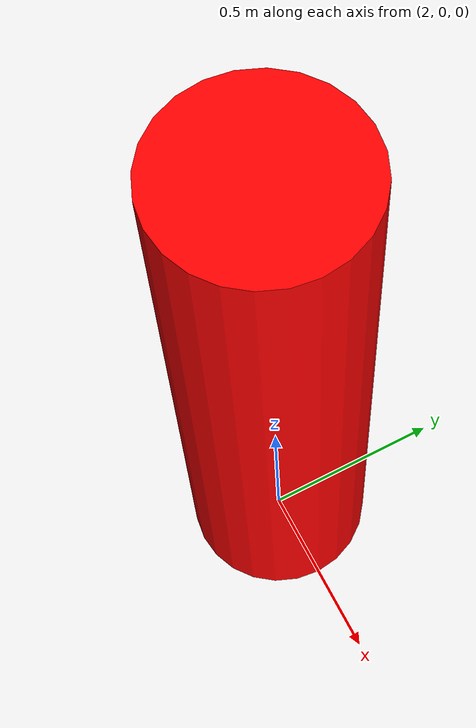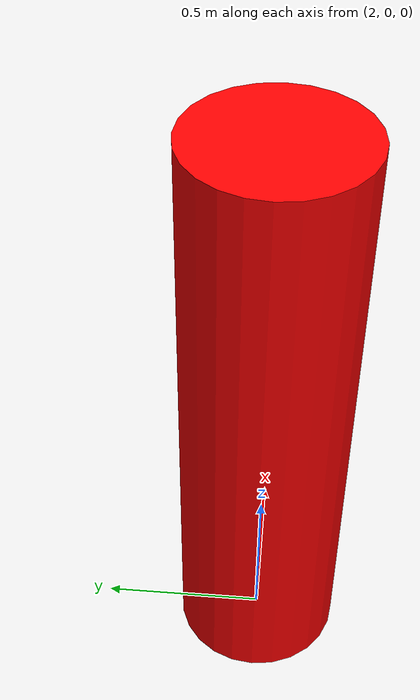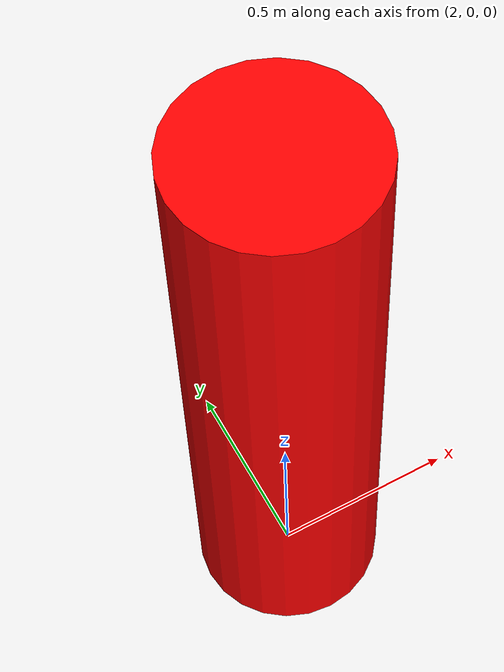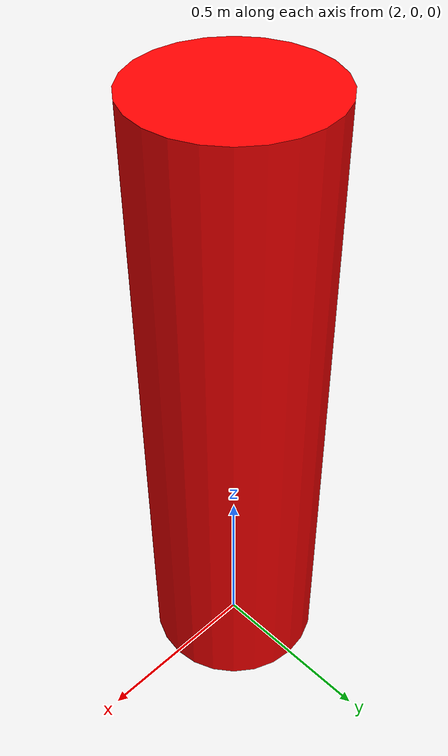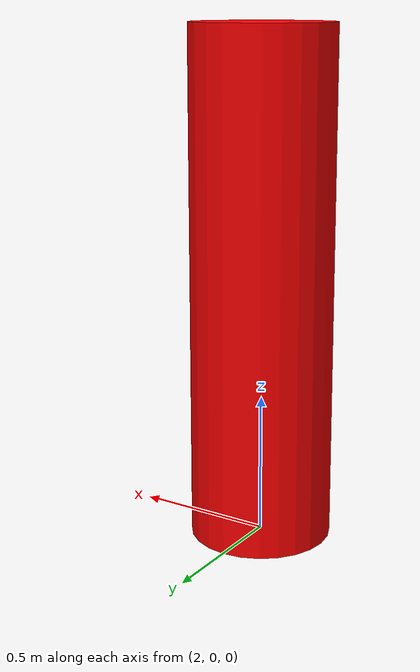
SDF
<?xml version="1.0" ?>
<sdf version="1.6">
  <model name="human">
    <pose>2 0 0.9 0 0 0</pose>

    <link name="body">

      <!-- VISUAL -->
      <visual name="visual">
        <geometry>
          <cylinder>
            <radius>0.25</radius>
            <length>1.8</length>
          </cylinder>
        </geometry>
        <material>
          <ambient>1 0 0 1</ambient>
        </material>
      </visual>

      <!-- COLLISION -->
      <collision name="collision">
        <geometry>
          <cylinder>
            <radius>0.25</radius>
            <length>1.8</length>
          </cylinder>
        </geometry>
      </collision>

      <!-- INERTIAL (VERY IMPORTANT) -->
      <inertial>
        <mass>20</mass>
        <inertia>
          <ixx>1</ixx>
          <iyy>1</iyy>
          <izz>1</izz>
          <ixy>0</ixy>
          <ixz>0</ixz>
          <iyz>0</iyz>
        </inertia>
      </inertial>

    </link>
  </model>
</sdf>
